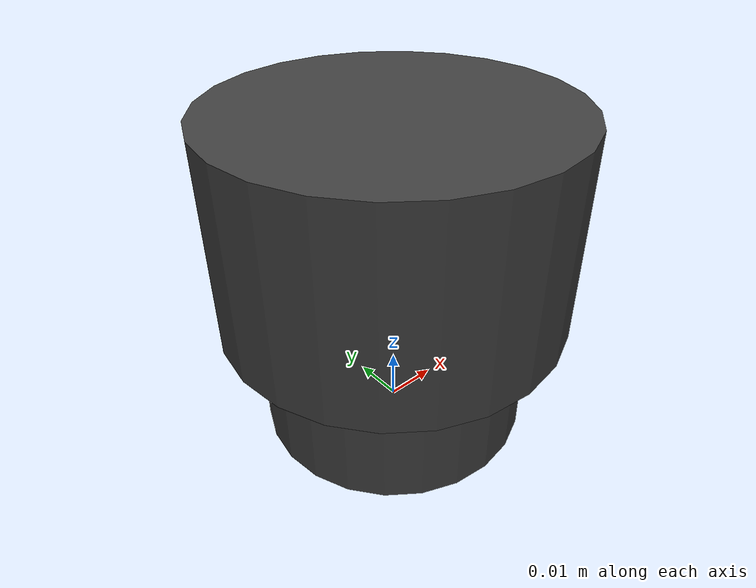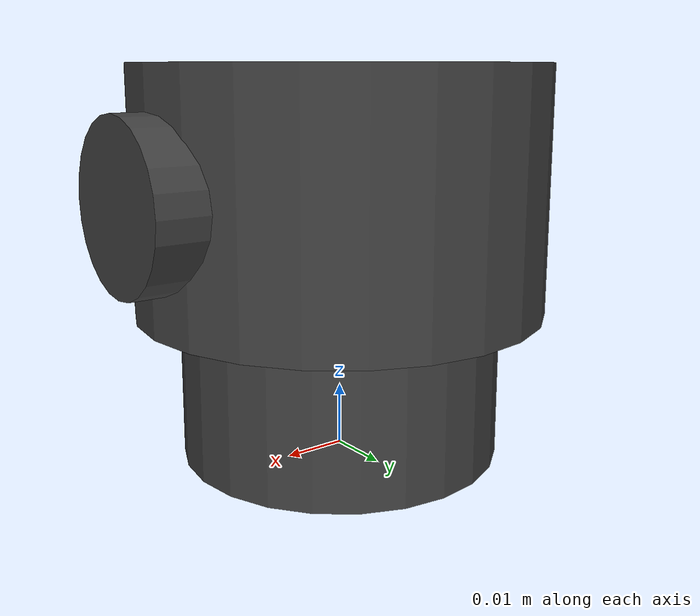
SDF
<?xml version="1.0" ?>
<sdf version="1.5">
    <!-- All values listed here are in meters or radians -->
    <!-- Scanse does not supply 3D meshes on their website,
         so the meshes and textures are loose approximations -->

    <model name="scanse_sweep">
        <plugin name="scanse_control" filename="libScanseCtrlPlugin.so" />

        <!-- Give the base link a unique name -->
        <link name="base">
            <!-- Make sure it sits on ground plane -->
            <pose>0 0 0.0117 0 0 0</pose>

            <inertial>
                <!-- Assume most of the mass is in the base. This is not
                     actually true, but gives a good enough approximation
                     and preserves the desired kinematics -->
                <mass>0.110</mass>
                <inertia>
                    <ixx>0.000022901</ixx>
                    <iyy>0.000022901</iyy>
                    <izz>0.000035764</izz>
                    <ixy>0</ixy>
                    <ixz>0</ixz>
                    <iyz>0</iyz>
                </inertia>
            </inertial>

            <collision name="base_collision">
                <geometry>
                    <cylinder>
                        <radius>.0255</radius>
                        <length>.0234</length>
                    </cylinder>
                </geometry>
            </collision>

            <!-- Visual is just a copy of the collision -->
            <visual name="base_visual">
                <geometry>
                    <cylinder>
                        <radius>.0255</radius>
                        <length>.0234</length>
                    </cylinder>
                </geometry>

                <!-- Dark gray, matte -->
                <material>
                    <ambient>0.25 0.25 0.25 1</ambient>
                    <diffuse>0.25 0.25 0.25 1</diffuse>
                    <specular>0 0 0 0</specular>
                    <emissive>0 0 0 0</emissive>
                </material>
            </visual>
        </link>

        <!-- Top Rotating Bit -->
        <link name="top">
            <!-- Make sure it sits on the base -->
            <pose>0 0 0.04265 0 0 0</pose>

            <inertial>
                <mass>0.010</mass>
                <inertia>
                    <ixx>0.000011798</ixx>
                    <iyy>0.000011798</iyy>
                    <izz>0.000021125</izz>
                    <ixy>0</ixy>
                    <ixz>0</ixz>
                    <iyz>0</iyz>
                </inertia>
            </inertial>

            <collision name="top_collision">
                <geometry>
                    <cylinder>
                        <radius>.0325</radius>
                        <length>.0385</length>
                    </cylinder>
                </geometry>
            </collision>

            <!-- Visual is just a copy of the collision -->
            <visual name="top_visual">
                <geometry>
                    <cylinder>
                        <radius>.0325</radius>
                        <length>.0385</length>
                    </cylinder>
                </geometry>

                <!-- Dark gray, matte -->
                <material>
                    <ambient>0.25 0.25 0.25 1</ambient>
                    <diffuse>0.25 0.25 0.25 1</diffuse>
                    <specular>0 0 0 0</specular>
                    <emissive>0 0 0 0</emissive>
                </material>
            </visual>

            <!-- This is purely aesthetic, but provides a reference for
                 the current direction of the LIDAR unit -->
            <visual name="sensor_visual">
                <pose>0.0275 0 0 0 1.5708 0</pose>

                <geometry>
                    <cylinder>
                        <radius>0.0127</radius>
                        <length>0.02</length>
                    </cylinder>
                </geometry>

                <material>
                    <ambient>0.25 0.25 0.25 1</ambient>
                    <diffuse>0.25 0.25 0.25 1</diffuse>
                    <specular>0.25 0.25 0.25 1</specular>
                    <emissive>0 0 0 0</emissive>
                </material>
            </visual>

            <!-- Add ray sensor -->
            <sensor type="ray" name="scanse_sensor">
                <!-- Set vertical location -->
                <pose>0 0 -0.00105 0 0 0</pose>
                <!-- plugin name="ScanseSensorPlugin" filename="libScanseSensorPlugin.so"/ -->
                <!-- Enable sensor visualization -->
                <visualize>false</visualize>
                <!-- Set update frequency of the sensor (500 Hz) -->
                <update_rate>500</update_rate>

                <ray>
                    <!-- Resolution is 1cm, so we assume the std_dev of
                        the noise is roughly 1mm -->
                    <noise>
                        <type>gaussian</type>
                        <mean>0.0</mean>
                        <stddev>0.001</stddev>
                    </noise>

                    <scan>
                        <horizontal>
                            <samples>1</samples>
                            <resolution>1</resolution>
                            <min_angle>0</min_angle>
                            <max_angle>0</max_angle>
                        </horizontal>

                        <!-- The Scanse Sweep has a vertical range of 5
                            degrees. We simulate this by taking multiple
                            data points over the range and averaging them. -->
                        <vertical>
                            <samples>5</samples>
                            <!-- Take average of samples over range -->
                            <resolution>5</resolution>
                            <!-- +/- 0.25 degrees -->
                            <min_angle>-0.00436</min_angle>
                            <max_angle>0.00436</max_angle>
                        </vertical>
                    </scan>

                    <range>
                        <!-- Minimum beam distance -->
                        <min>0.05</min>
                        <!-- Maximum beam distance -->
                        <max>40.0</max>
                        <!-- Linear beam resolution -->
                        <resolution>0.01</resolution>
                    </range>
                </ray>
            </sensor>
        </link>

        <!-- The top parts sits on the base and spins around the z-axis.
             Note that due to the small masses, when controlling this, your
             PID gain should be on the order of 0.0001 -->
        <joint type="revolute" name="scanse_joint">
            <pose>0 0 -0.01925 0 0 0</pose>
            <parent>base</parent>
            <child>top</child>

            <axis>
                <xyz>0 0 1</xyz>
                <limit>
                    <!-- Use a very large number to indicate
                         continuous revolution -->
                    <lower>-10000000000000000</lower>
                    <upper>10000000000000000</upper>
                </limit>
            </axis>
        </joint>

    </model>
</sdf>
